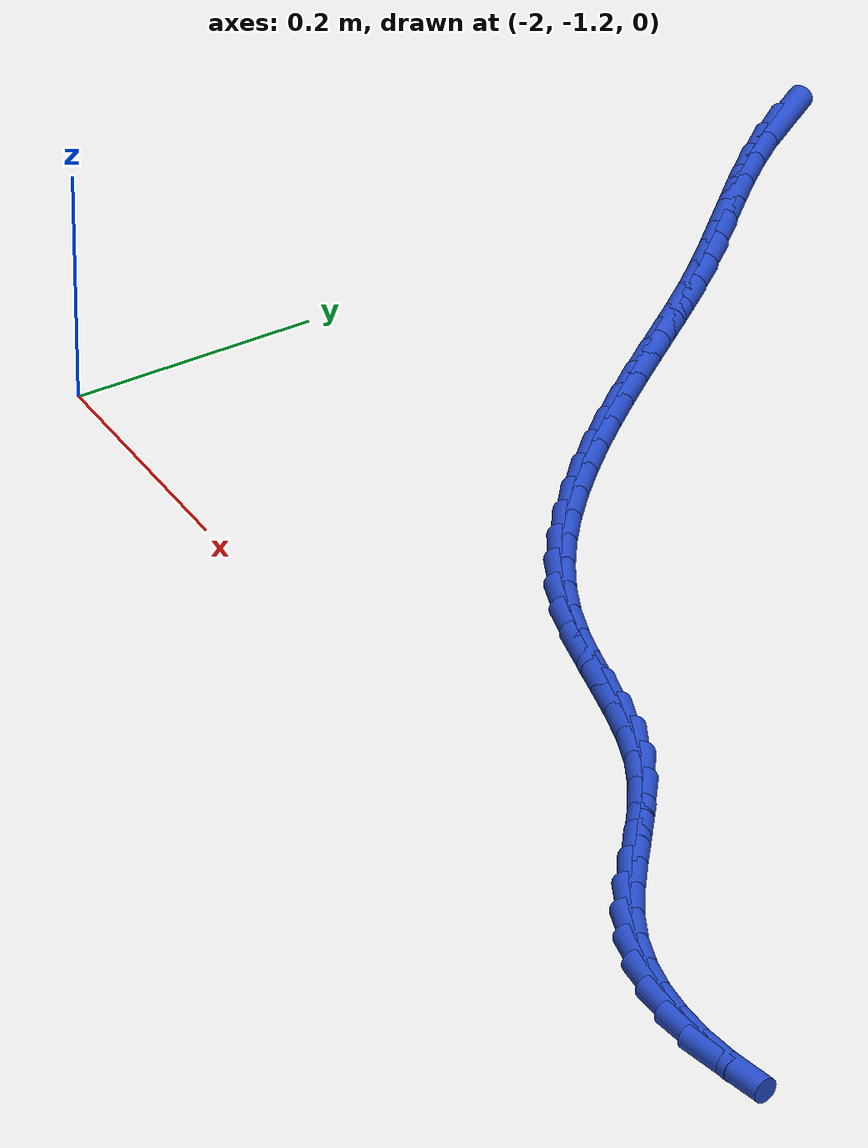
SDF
<sdf version="1.6">
 <world name="default">
  <model name="ground_plane">
   <static>1</static>
   <link name="link">
    <collision name="collision">
     <geometry><plane><normal>0 0 1</normal><size>100 100</size></plane></geometry>
     <surface><friction><ode><mu>100</mu><mu2>50</mu2></ode></friction></surface>
    </collision>
    <visual name="visual">
     <cast_shadows>0</cast_shadows>
     <geometry><plane><normal>0 0 1</normal><size>100 100</size></plane></geometry>
     <material>
      <script><uri>file://media/materials/scripts/gazebo.material</uri><name>Gazebo/WhiteGlow</name></script>
     </material>
    </visual>
   </link>
  </model>
  <model name="line">
   <link name="link_141">
    <pose>-2.042739365819361 -0.5538218100864906 0.01 0 1.57 -0.9629384541733108</pose>
    <collision name="collision">
     <geometry><cylinder><radius>0.01</radius><length>0.08</length></cylinder></geometry>
    </collision>
    <visual name="visual">
     <material>
      <script><name>Gazebo/Blue</name><uri>file://media/materials/scripts/gazebo.material</uri></script>
     </material>
     <geometry><cylinder><radius>0.01</radius><length>0.08</length></cylinder></geometry>
    </visual>
   </link>
   <link name="link_142">
    <pose>-2.0261908063966514 -0.577607529052997 0.01 0 1.57 -0.885784146225363</pose>
    <collision name="collision">
     <geometry><cylinder><radius>0.01</radius><length>0.08</length></cylinder></geometry>
    </collision>
    <visual name="visual">
     <material>
      <script><name>Gazebo/Blue</name><uri>file://media/materials/scripts/gazebo.material</uri></script>
     </material>
     <geometry><cylinder><radius>0.01</radius><length>0.08</length></cylinder></geometry>
    </visual>
   </link>
   <link name="link_143">
    <pose>-2.0072623998021184 -0.6007761389295128 0.01 0 1.57 -0.8317789887584287</pose>
    <collision name="collision">
     <geometry><cylinder><radius>0.01</radius><length>0.08</length></cylinder></geometry>
    </collision>
    <visual name="visual">
     <material>
      <script><name>Gazebo/Blue</name><uri>file://media/materials/scripts/gazebo.material</uri></script>
     </material>
     <geometry><cylinder><radius>0.01</radius><length>0.08</length></cylinder></geometry>
    </visual>
   </link>
   <link name="link_144">
    <pose>-1.986564077983113 -0.6234893693918093 0.01 0 1.57 -0.7980736910822401</pose>
    <collision name="collision">
     <geometry><cylinder><radius>0.01</radius><length>0.08</length></cylinder></geometry>
    </collision>
    <visual name="visual">
     <material>
      <script><name>Gazebo/Blue</name><uri>file://media/materials/scripts/gazebo.material</uri></script>
     </material>
     <geometry><cylinder><radius>0.01</radius><length>0.08</length></cylinder></geometry>
    </visual>
   </link>
   <link name="link_145">
    <pose>-1.9647057728869868 -0.6459089501156577 0.01 0 1.57 -0.7826978003847713</pose>
    <collision name="collision">
     <geometry><cylinder><radius>0.01</radius><length>0.08</length></cylinder></geometry>
    </collision>
    <visual name="visual">
     <material>
      <script><name>Gazebo/Blue</name><uri>file://media/materials/scripts/gazebo.material</uri></script>
     </material>
     <geometry><cylinder><radius>0.01</radius><length>0.08</length></cylinder></geometry>
    </visual>
   </link>
   <link name="link_146">
    <pose>-1.94229741646109 -0.6681966107768289 0.01 0 1.57 -0.7847039985629515</pose>
    <collision name="collision">
     <geometry><cylinder><radius>0.01</radius><length>0.08</length></cylinder></geometry>
    </collision>
    <visual name="visual">
     <material>
      <script><name>Gazebo/Blue</name><uri>file://media/materials/scripts/gazebo.material</uri></script>
     </material>
     <geometry><cylinder><radius>0.01</radius><length>0.08</length></cylinder></geometry>
    </visual>
   </link>
   <link name="link_147">
    <pose>-1.9199489406527739 -0.6905140810510948 0.01 0 1.57 -0.8041873086902177</pose>
    <collision name="collision">
     <geometry><cylinder><radius>0.01</radius><length>0.08</length></cylinder></geometry>
    </collision>
    <visual name="visual">
     <material>
      <script><name>Gazebo/Blue</name><uri>file://media/materials/scripts/gazebo.material</uri></script>
     </material>
     <geometry><cylinder><radius>0.01</radius><length>0.08</length></cylinder></geometry>
    </visual>
   </link>
   <link name="link_148">
    <pose>-1.8982702774093896 -0.7130230906142252 0.01 0 1.57 -0.8385740555390558</pose>
    <collision name="collision">
     <geometry><cylinder><radius>0.01</radius><length>0.08</length></cylinder></geometry>
    </collision>
    <visual name="visual">
     <material>
      <script><name>Gazebo/Blue</name><uri>file://media/materials/scripts/gazebo.material</uri></script>
     </material>
     <geometry><cylinder><radius>0.01</radius><length>0.08</length></cylinder></geometry>
    </visual>
   </link>
   <link name="link_149">
    <pose>-1.8777346586278865 -0.7358676666965994 0.01 0 1.57 -0.8680893456076898</pose>
    <collision name="collision">
     <geometry><cylinder><radius>0.01</radius><length>0.08</length></cylinder></geometry>
    </collision>
    <visual name="visual">
     <material>
      <script><name>Gazebo/Blue</name><uri>file://media/materials/scripts/gazebo.material</uri></script>
     </material>
     <geometry><cylinder><radius>0.01</radius><length>0.08</length></cylinder></geometry>
    </visual>
   </link>
   <link name="link_150">
    <pose>-1.8580632828461128 -0.759094449370116 0.01 0 1.57 -0.8846657751536458</pose>
    <collision name="collision">
     <geometry><cylinder><radius>0.01</radius><length>0.08</length></cylinder></geometry>
    </collision>
    <visual name="visual">
     <material>
      <script><name>Gazebo/Blue</name><uri>file://media/materials/scripts/gazebo.material</uri></script>
     </material>
     <geometry><cylinder><radius>0.01</radius><length>0.08</length></cylinder></geometry>
    </visual>
   </link>
   <link name="link_151">
    <pose>-1.838720111648912 -0.7827167669185643 0.01 0 1.57 -0.8883416244961841</pose>
    <collision name="collision">
     <geometry><cylinder><radius>0.01</radius><length>0.08</length></cylinder></geometry>
    </collision>
    <visual name="visual">
     <material>
      <script><name>Gazebo/Blue</name><uri>file://media/materials/scripts/gazebo.material</uri></script>
     </material>
     <geometry><cylinder><radius>0.01</radius><length>0.08</length></cylinder></geometry>
    </visual>
   </link>
   <link name="link_152">
    <pose>-1.8192083698674466 -0.8067244408778448 0.01 0 1.57 -0.8831493738526501</pose>
    <collision name="collision">
     <geometry><cylinder><radius>0.01</radius><length>0.08</length></cylinder></geometry>
    </collision>
    <visual name="visual">
     <material>
      <script><name>Gazebo/Blue</name><uri>file://media/materials/scripts/gazebo.material</uri></script>
     </material>
     <geometry><cylinder><radius>0.01</radius><length>0.08</length></cylinder></geometry>
    </visual>
   </link>
   <link name="link_153">
    <pose>-1.799323105296002 -0.8309337885922017 0.01 0 1.57 -0.8709891344859348</pose>
    <collision name="collision">
     <geometry><cylinder><radius>0.01</radius><length>0.08</length></cylinder></geometry>
    </collision>
    <visual name="visual">
     <material>
      <script><name>Gazebo/Blue</name><uri>file://media/materials/scripts/gazebo.material</uri></script>
     </material>
     <geometry><cylinder><radius>0.01</radius><length>0.08</length></cylinder></geometry>
    </visual>
   </link>
   <link name="link_154">
    <pose>-1.7789901548372935 -0.85508336636099 0.01 0 1.57 -0.8518549812771977</pose>
    <collision name="collision">
     <geometry><cylinder><radius>0.01</radius><length>0.08</length></cylinder></geometry>
    </collision>
    <visual name="visual">
     <material>
      <script><name>Gazebo/Blue</name><uri>file://media/materials/scripts/gazebo.material</uri></script>
     </material>
     <geometry><cylinder><radius>0.01</radius><length>0.08</length></cylinder></geometry>
    </visual>
   </link>
   <link name="link_155">
    <pose>-1.7581359721779228 -0.8789113637729096 0.01 0 1.57 -0.825553387727471</pose>
    <collision name="collision">
     <geometry><cylinder><radius>0.01</radius><length>0.08</length></cylinder></geometry>
    </collision>
    <visual name="visual">
     <material>
      <script><name>Gazebo/Blue</name><uri>file://media/materials/scripts/gazebo.material</uri></script>
     </material>
     <geometry><cylinder><radius>0.01</radius><length>0.08</length></cylinder></geometry>
    </visual>
   </link>
   <link name="link_156">
    <pose>-1.736687011004493 -0.9021559704166595 0.01 0 1.57 -0.791735464695646</pose>
    <collision name="collision">
     <geometry><cylinder><radius>0.01</radius><length>0.08</length></cylinder></geometry>
    </collision>
    <visual name="visual">
     <material>
      <script><name>Gazebo/Blue</name><uri>file://media/materials/scripts/gazebo.material</uri></script>
     </material>
     <geometry><cylinder><radius>0.01</radius><length>0.08</length></cylinder></geometry>
    </visual>
   </link>
   <link name="link_157">
    <pose>-1.7145697250036054 -0.9245553758809406 0.01 0 1.57 -0.7499270174143194</pose>
    <collision name="collision">
     <geometry><cylinder><radius>0.01</radius><length>0.08</length></cylinder></geometry>
    </collision>
    <visual name="visual">
     <material>
      <script><name>Gazebo/Blue</name><uri>file://media/materials/scripts/gazebo.material</uri></script>
     </material>
     <geometry><cylinder><radius>0.01</radius><length>0.08</length></cylinder></geometry>
    </visual>
   </link>
   <link name="link_158">
    <pose>-1.6917105678618625 -0.9458477697544532 0.01 0 1.57 -0.6995736791599588</pose>
    <collision name="collision">
     <geometry><cylinder><radius>0.01</radius><length>0.08</length></cylinder></geometry>
    </collision>
    <visual name="visual">
     <material>
      <script><name>Gazebo/Blue</name><uri>file://media/materials/scripts/gazebo.material</uri></script>
     </material>
     <geometry><cylinder><radius>0.01</radius><length>0.08</length></cylinder></geometry>
    </visual>
   </link>
   <link name="link_159">
    <pose>-1.6680359932658653 -0.9657713416258968 0.01 0 1.57 -0.6401128425897875</pose>
    <collision name="collision">
     <geometry><cylinder><radius>0.01</radius><length>0.08</length></cylinder></geometry>
    </collision>
    <visual name="visual">
     <material>
      <script><name>Gazebo/Blue</name><uri>file://media/materials/scripts/gazebo.material</uri></script>
     </material>
     <geometry><cylinder><radius>0.01</radius><length>0.08</length></cylinder></geometry>
    </visual>
   </link>
   <link name="link_160">
    <pose>-1.6434724549022168 -0.9840642810839721 0.01 0 1.57 -0.5710850225649039</pose>
    <collision name="collision">
     <geometry><cylinder><radius>0.01</radius><length>0.08</length></cylinder></geometry>
    </collision>
    <visual name="visual">
     <material>
      <script><name>Gazebo/Blue</name><uri>file://media/materials/scripts/gazebo.material</uri></script>
     </material>
     <geometry><cylinder><radius>0.01</radius><length>0.08</length></cylinder></geometry>
    </visual>
   </link>
   <link name="link_161">
    <pose>-1.6179464064575189 -1.0004647777173792 0.01 0 1.57 -0.49229301423641625</pose>
    <collision name="collision">
     <geometry><cylinder><radius>0.01</radius><length>0.08</length></cylinder></geometry>
    </collision>
    <visual name="visual">
     <material>
      <script><name>Gazebo/Blue</name><uri>file://media/materials/scripts/gazebo.material</uri></script>
     </material>
     <geometry><cylinder><radius>0.01</radius><length>0.08</length></cylinder></geometry>
    </visual>
   </link>
   <link name="link_162">
    <pose>-1.5913843016183722 -1.014711021114818 0.01 0 1.57 -0.4040022966942038</pose>
    <collision name="collision">
     <geometry><cylinder><radius>0.01</radius><length>0.08</length></cylinder></geometry>
    </collision>
    <visual name="visual">
     <material>
      <script><name>Gazebo/Blue</name><uri>file://media/materials/scripts/gazebo.material</uri></script>
     </material>
     <geometry><cylinder><radius>0.01</radius><length>0.08</length></cylinder></geometry>
    </visual>
   </link>
   <link name="link_163">
    <pose>-1.5637125940713812 -1.0265412008649888 0.01 0 1.57 -0.309222204045445</pose>
    <collision name="collision">
     <geometry><cylinder><radius>0.01</radius><length>0.08</length></cylinder></geometry>
    </collision>
    <visual name="visual">
     <material>
      <script><name>Gazebo/Blue</name><uri>file://media/materials/scripts/gazebo.material</uri></script>
     </material>
     <geometry><cylinder><radius>0.01</radius><length>0.08</length></cylinder></geometry>
    </visual>
   </link>
   <link name="link_164">
    <pose>-1.5348809037460711 -1.0357520642355633 0.01 0 1.57 -0.2359287553898379</pose>
    <collision name="collision">
     <geometry><cylinder><radius>0.01</radius><length>0.08</length></cylinder></geometry>
    </collision>
    <visual name="visual">
     <material>
      <script><name>Gazebo/Blue</name><uri>file://media/materials/scripts/gazebo.material</uri></script>
     </material>
     <geometry><cylinder><radius>0.01</radius><length>0.08</length></cylinder></geometry>
    </visual>
   </link>
   <link name="link_165">
    <pose>-1.5051401354048395 -1.04290192093571 0.01 0 1.57 -0.2019196745133139</pose>
    <collision name="collision">
     <geometry><cylinder><radius>0.01</radius><length>0.08</length></cylinder></geometry>
    </collision>
    <visual name="visual">
     <material>
      <script><name>Gazebo/Blue</name><uri>file://media/materials/scripts/gazebo.material</uri></script>
     </material>
     <geometry><cylinder><radius>0.01</radius><length>0.08</length></cylinder></geometry>
    </visual>
   </link>
   <link name="link_166">
    <pose>-1.4749519181585045 -1.0490817319459507 0.01 0 1.57 -0.20623080962031587</pose>
    <collision name="collision">
     <geometry><cylinder><radius>0.01</radius><length>0.08</length></cylinder></geometry>
    </collision>
    <visual name="visual">
     <material>
      <script><name>Gazebo/Blue</name><uri>file://media/materials/scripts/gazebo.material</uri></script>
     </material>
     <geometry><cylinder><radius>0.01</radius><length>0.08</length></cylinder></geometry>
    </visual>
   </link>
   <link name="link_167">
    <pose>-1.444782206454713 -1.055393391469175 0.01 0 1.57 -0.24890905191882967</pose>
    <collision name="collision">
     <geometry><cylinder><radius>0.01</radius><length>0.08</length></cylinder></geometry>
    </collision>
    <visual name="visual">
     <material>
      <script><name>Gazebo/Blue</name><uri>file://media/materials/scripts/gazebo.material</uri></script>
     </material>
     <geometry><cylinder><radius>0.01</radius><length>0.08</length></cylinder></geometry>
    </visual>
   </link>
   <link name="link_168">
    <pose>-1.4150969547411094 -1.0629387937082717 0.01 0 1.57 -0.33120310097130573</pose>
    <collision name="collision">
     <geometry><cylinder><radius>0.01</radius><length>0.08</length></cylinder></geometry>
    </collision>
    <visual name="visual">
     <material>
      <script><name>Gazebo/Blue</name><uri>file://media/materials/scripts/gazebo.material</uri></script>
     </material>
     <geometry><cylinder><radius>0.01</radius><length>0.08</length></cylinder></geometry>
    </visual>
   </link>
   <link name="link_169">
    <pose>-1.3863621174653398 -1.07281983286613 0.01 0 1.57 -0.4476491233912392</pose>
    <collision name="collision">
     <geometry><cylinder><radius>0.01</radius><length>0.08</length></cylinder></geometry>
    </collision>
    <visual name="visual">
     <material>
      <script><name>Gazebo/Blue</name><uri>file://media/materials/scripts/gazebo.material</uri></script>
     </material>
     <geometry><cylinder><radius>0.01</radius><length>0.08</length></cylinder></geometry>
    </visual>
   </link>
   <link name="link_170">
    <pose>-1.3589758903173326 -1.0859695739476745 0.01 0 1.57 -0.54674007751913</pose>
    <collision name="collision">
     <geometry><cylinder><radius>0.01</radius><length>0.08</length></cylinder></geometry>
    </collision>
    <visual name="visual">
     <material>
      <script><name>Gazebo/Blue</name><uri>file://media/materials/scripts/gazebo.material</uri></script>
     </material>
     <geometry><cylinder><radius>0.01</radius><length>0.08</length></cylinder></geometry>
    </visual>
   </link>
   <link name="link_171">
    <pose>-1.332773089640239 -1.1019173536949143 0.01 0 1.57 -0.6042298845493278</pose>
    <collision name="collision">
     <geometry><cylinder><radius>0.01</radius><length>0.08</length></cylinder></geometry>
    </collision>
    <visual name="visual">
     <material>
      <script><name>Gazebo/Blue</name><uri>file://media/materials/scripts/gazebo.material</uri></script>
     </material>
     <geometry><cylinder><radius>0.01</radius><length>0.08</length></cylinder></geometry>
    </visual>
   </link>
   <link name="link_172">
    <pose>-1.3073092628388479 -1.1194966762745755 0.01 0 1.57 -0.6218226484407814</pose>
    <collision name="collision">
     <geometry><cylinder><radius>0.01</radius><length>0.08</length></cylinder></geometry>
    </collision>
    <visual name="visual">
     <material>
      <script><name>Gazebo/Blue</name><uri>file://media/materials/scripts/gazebo.material</uri></script>
     </material>
     <geometry><cylinder><radius>0.01</radius><length>0.08</length></cylinder></geometry>
    </visual>
   </link>
   <link name="link_173">
    <pose>-1.282137953212372 -1.1375360523802367 0.01 0 1.57 -0.6000539323135391</pose>
    <collision name="collision">
     <geometry><cylinder><radius>0.01</radius><length>0.08</length></cylinder></geometry>
    </collision>
    <visual name="visual">
     <material>
      <script><name>Gazebo/Blue</name><uri>file://media/materials/scripts/gazebo.material</uri></script>
     </material>
     <geometry><cylinder><radius>0.01</radius><length>0.08</length></cylinder></geometry>
    </visual>
   </link>
   <link name="link_174">
    <pose>-1.2568127040600245 -1.1548639927054767 0.01 0 1.57 -0.5372832882218672</pose>
    <collision name="collision">
     <geometry><cylinder><radius>0.01</radius><length>0.08</length></cylinder></geometry>
    </collision>
    <visual name="visual">
     <material>
      <script><name>Gazebo/Blue</name><uri>file://media/materials/scripts/gazebo.material</uri></script>
     </material>
     <geometry><cylinder><radius>0.01</radius><length>0.08</length></cylinder></geometry>
    </visual>
   </link>
   <link name="link_175">
    <pose>-1.2308870586810192 -1.1703090079438747 0.01 0 1.57 -0.4326163121578539</pose>
    <collision name="collision">
     <geometry><cylinder><radius>0.01</radius><length>0.08</length></cylinder></geometry>
    </collision>
    <visual name="visual">
     <material>
      <script><name>Gazebo/Blue</name><uri>file://media/materials/scripts/gazebo.material</uri></script>
     </material>
     <geometry><cylinder><radius>0.01</radius><length>0.08</length></cylinder></geometry>
    </visual>
   </link>
   <link name="link_176">
    <pose>-1.2039398366274283 -1.1827530045405477 0.01 0 1.57 -0.3120570721133982</pose>
    <collision name="collision">
     <geometry><cylinder><radius>0.01</radius><length>0.08</length></cylinder></geometry>
    </collision>
    <visual name="visual">
     <material>
      <script><name>Gazebo/Blue</name><uri>file://media/materials/scripts/gazebo.material</uri></script>
     </material>
     <geometry><cylinder><radius>0.01</radius><length>0.08</length></cylinder></geometry>
    </visual>
   </link>
   <link name="link_177">
    <pose>-1.1758922037591648 -1.1918010910107355 0.01 0 1.57 -0.19678263080916822</pose>
    <collision name="collision">
     <geometry><cylinder><radius>0.01</radius><length>0.08</length></cylinder></geometry>
    </collision>
    <visual name="visual">
     <material>
      <script><name>Gazebo/Blue</name><uri>file://media/materials/scripts/gazebo.material</uri></script>
     </material>
     <geometry><cylinder><radius>0.01</radius><length>0.08</length></cylinder></geometry>
    </visual>
   </link>
   <link name="link_178">
    <pose>-1.1469116492506537 -1.1975787306300285 0.01 0 1.57 -0.08867232930207719</pose>
    <collision name="collision">
     <geometry><cylinder><radius>0.01</radius><length>0.08</length></cylinder></geometry>
    </collision>
    <visual name="visual">
     <material>
      <script><name>Gazebo/Blue</name><uri>file://media/materials/scripts/gazebo.material</uri></script>
     </material>
     <geometry><cylinder><radius>0.01</radius><length>0.08</length></cylinder></geometry>
    </visual>
   </link>
   <link name="link_179">
    <pose>-1.1171710792111211 -1.2002228298775044 0.01 0 1.57 0.011623664403238575</pose>
    <collision name="collision">
     <geometry><cylinder><radius>0.01</radius><length>0.08</length></cylinder></geometry>
    </collision>
    <visual name="visual">
     <material>
      <script><name>Gazebo/Blue</name><uri>file://media/materials/scripts/gazebo.material</uri></script>
     </material>
     <geometry><cylinder><radius>0.01</radius><length>0.08</length></cylinder></geometry>
    </visual>
   </link>
   <link name="link_180">
    <pose>-1.086843399749793 -1.1998702952322386 0.01 0 1.57 0.10411356727122575</pose>
    <collision name="collision">
     <geometry><cylinder><radius>0.01</radius><length>0.08</length></cylinder></geometry>
    </collision>
    <visual name="visual">
     <material>
      <script><name>Gazebo/Blue</name><uri>file://media/materials/scripts/gazebo.material</uri></script>
     </material>
     <geometry><cylinder><radius>0.01</radius><length>0.08</length></cylinder></geometry>
    </visual>
   </link>
   <link name="link_181">
    <pose>-1.056101516975896 -1.1966580331733085 0.01 0 1.57 0.18926544977994386</pose>
    <collision name="collision">
     <geometry><cylinder><radius>0.01</radius><length>0.08</length></cylinder></geometry>
    </collision>
    <visual name="visual">
     <material>
      <script><name>Gazebo/Blue</name><uri>file://media/materials/scripts/gazebo.material</uri></script>
     </material>
     <geometry><cylinder><radius>0.01</radius><length>0.08</length></cylinder></geometry>
    </visual>
   </link>
  </model>
 </world>
</sdf>
